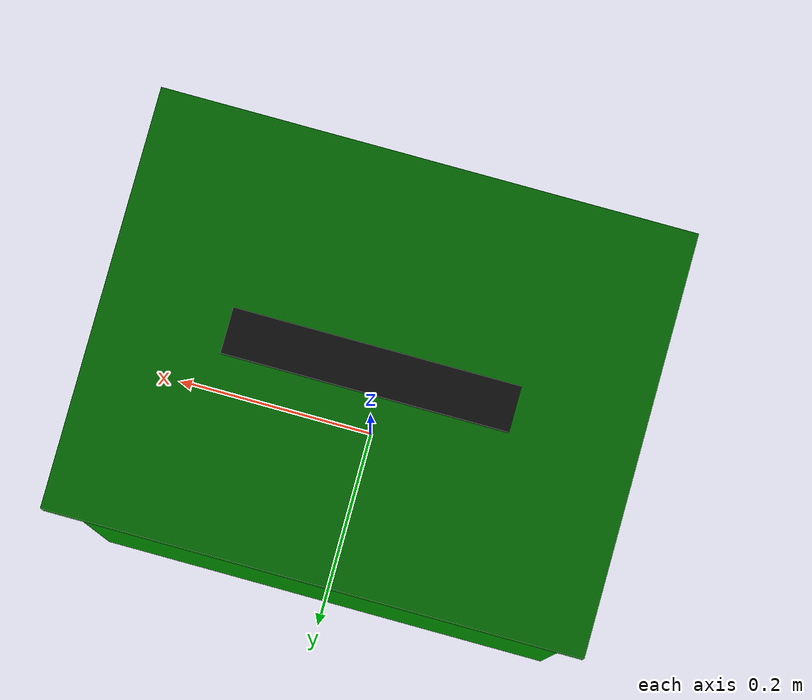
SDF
<?xml version="1.0"?>
<sdf version="1.8">
  <model name="paper_bin">
    <static>true</static>
    <link name="link">
      <collision name="body_collision">
        <geometry>
          <box>
            <size>0.45 0.35 0.55</size>
          </box>
        </geometry>
        <surface>
          <friction>
            <ode>
              <mu>0.8</mu>
              <mu2>0.8</mu2>
            </ode>
          </friction>
        </surface>
      </collision>
      <!-- Main body -->
      <visual name="body_visual">
        <pose>0 0 0.275 0 0 0</pose>
        <geometry>
          <box>
            <size>0.45 0.35 0.55</size>
          </box>
        </geometry>
        <material>
          <ambient>0.0 0.5 0.0 1</ambient>
          <diffuse>0.0 0.6 0.0 1</diffuse>
          <specular>0.1 0.1 0.1 1</specular>
        </material>
      </visual>
      <!-- Lid -->
      <visual name="lid_visual">
        <pose>0 0 0.565 0 0 0</pose>
        <geometry>
          <box>
            <size>0.47 0.37 0.03</size>
          </box>
        </geometry>
        <material>
          <ambient>0.0 0.35 0.0 1</ambient>
          <diffuse>0.0 0.4 0.0 1</diffuse>
          <specular>0.1 0.1 0.1 1</specular>
        </material>
      </visual>
      <!-- Label strip -->
      <visual name="label_visual">
        <pose>0.226 0 0.275 0 0 0</pose>
        <geometry>
          <box>
            <size>0.002 0.25 0.12</size>
          </box>
        </geometry>
        <material>
          <ambient>0.9 0.9 0.9 1</ambient>
          <diffuse>0.95 0.95 0.95 1</diffuse>
          <specular>0.2 0.2 0.2 1</specular>
        </material>
      </visual>
      <!-- Slot opening on top -->
      <visual name="slot_visual">
        <pose>0 0 0.582 0 0 0</pose>
        <geometry>
          <box>
            <size>0.25 0.04 0.01</size>
          </box>
        </geometry>
        <material>
          <ambient>0.05 0.05 0.05 1</ambient>
          <diffuse>0.05 0.05 0.05 1</diffuse>
          <specular>0.0 0.0 0.0 1</specular>
        </material>
      </visual>
    </link>
  </model>
</sdf>
